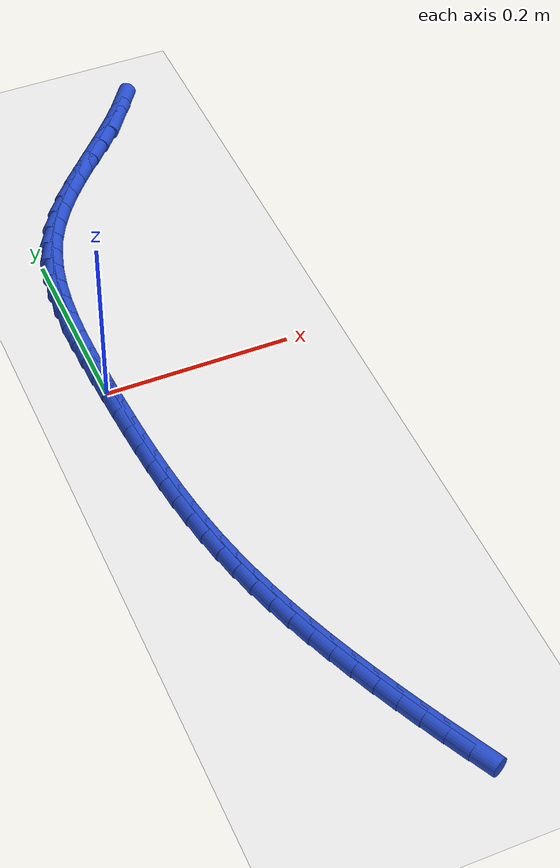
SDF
<sdf version="1.6">
 <world name="default">
  <model name="ground_plane">
   <static>1</static>
   <link name="link">
    <collision name="collision">
     <geometry><plane><normal>0 0 1</normal><size>100 100</size></plane></geometry>
     <surface><friction><ode><mu>100</mu><mu2>50</mu2></ode></friction></surface>
    </collision>
    <visual name="visual">
     <cast_shadows>0</cast_shadows>
     <geometry><plane><normal>0 0 1</normal><size>100 100</size></plane></geometry>
     <material>
      <script><uri>file://media/materials/scripts/gazebo.material</uri><name>Gazebo/WhiteGlow</name></script>
     </material>
    </visual>
   </link>
  </model>
  <model name="line">
   <link name="link_0">
    <pose>2.168404344971009e-19 -1.3877787807814457e-17 0.01 0 1.57 -1.525572002247885</pose>
    <collision name="collision">
     <geometry><cylinder><radius>0.01</radius><length>0.08</length></cylinder></geometry>
    </collision>
    <visual name="visual">
     <material>
      <script><name>Gazebo/Blue</name><uri>file://media/materials/scripts/gazebo.material</uri></script>
     </material>
     <geometry><cylinder><radius>0.01</radius><length>0.08</length></cylinder></geometry>
    </visual>
   </link>
   <link name="link_1">
    <pose>-0.001192701186760146 0.026355019515203342 0.01 0 1.57 -1.5404109730915096</pose>
    <collision name="collision">
     <geometry><cylinder><radius>0.01</radius><length>0.08</length></cylinder></geometry>
    </collision>
    <visual name="visual">
     <material>
      <script><name>Gazebo/Blue</name><uri>file://media/materials/scripts/gazebo.material</uri></script>
     </material>
     <geometry><cylinder><radius>0.01</radius><length>0.08</length></cylinder></geometry>
    </visual>
   </link>
   <link name="link_2">
    <pose>-0.001996711604233633 0.0528073350155297 0.01 0 1.57 -1.5643912887022506</pose>
    <collision name="collision">
     <geometry><cylinder><radius>0.01</radius><length>0.08</length></cylinder></geometry>
    </collision>
    <visual name="visual">
     <material>
      <script><name>Gazebo/Blue</name><uri>file://media/materials/scripts/gazebo.material</uri></script>
     </material>
     <geometry><cylinder><radius>0.01</radius><length>0.08</length></cylinder></geometry>
    </visual>
   </link>
   <link name="link_3">
    <pose>-0.00216583373129672 0.07921152057897023 0.01 0 1.57 1.5436398385513426</pose>
    <collision name="collision">
     <geometry><cylinder><radius>0.01</radius><length>0.08</length></cylinder></geometry>
    </collision>
    <visual name="visual">
     <material>
      <script><name>Gazebo/Blue</name><uri>file://media/materials/scripts/gazebo.material</uri></script>
     </material>
     <geometry><cylinder><radius>0.01</radius><length>0.08</length></cylinder></geometry>
    </visual>
   </link>
   <link name="link_4">
    <pose>-0.001453870046825666 0.10542215028351616 0.01 0 1.57 1.499824508919937</pose>
    <collision name="collision">
     <geometry><cylinder><radius>0.01</radius><length>0.08</length></cylinder></geometry>
    </collision>
    <visual name="visual">
     <material>
      <script><name>Gazebo/Blue</name><uri>file://media/materials/scripts/gazebo.material</uri></script>
     </material>
     <geometry><cylinder><radius>0.01</radius><length>0.08</length></cylinder></geometry>
    </visual>
   </link>
   <link name="link_5">
    <pose>0.0003853769703032672 0.1312937982071587 0.01 0 1.57 1.4449165321309105</pose>
    <collision name="collision">
     <geometry><cylinder><radius>0.01</radius><length>0.08</length></cylinder></geometry>
    </collision>
    <visual name="visual">
     <material>
      <script><name>Gazebo/Blue</name><uri>file://media/materials/scripts/gazebo.material</uri></script>
     </material>
     <geometry><cylinder><radius>0.01</radius><length>0.08</length></cylinder></geometry>
    </visual>
   </link>
   <link name="link_6">
    <pose>0.0035981048412138212 0.15668103842788905 0.01 0 1.57 1.3780297026481514</pose>
    <collision name="collision">
     <geometry><cylinder><radius>0.01</radius><length>0.08</length></cylinder></geometry>
    </collision>
    <visual name="visual">
     <material>
      <script><name>Gazebo/Blue</name><uri>file://media/materials/scripts/gazebo.material</uri></script>
     </material>
     <geometry><cylinder><radius>0.01</radius><length>0.08</length></cylinder></geometry>
    </visual>
   </link>
   <link name="link_7">
    <pose>0.00843051108702974 0.18143844502369835 0.01 0 1.57 1.2984342029268958</pose>
    <collision name="collision">
     <geometry><cylinder><radius>0.01</radius><length>0.08</length></cylinder></geometry>
    </collision>
    <visual name="visual">
     <material>
      <script><name>Gazebo/Blue</name><uri>file://media/materials/scripts/gazebo.material</uri></script>
     </material>
     <geometry><cylinder><radius>0.01</radius><length>0.08</length></cylinder></geometry>
    </visual>
   </link>
   <link name="link_8">
    <pose>0.015128793228874757 0.20542059207257785 0.01 0 1.57 1.205869643138353</pose>
    <collision name="collision">
     <geometry><cylinder><radius>0.01</radius><length>0.08</length></cylinder></geometry>
    </collision>
    <visual name="visual">
     <material>
      <script><name>Gazebo/Blue</name><uri>file://media/materials/scripts/gazebo.material</uri></script>
     </material>
     <geometry><cylinder><radius>0.01</radius><length>0.08</length></cylinder></geometry>
    </visual>
   </link>
   <link name="link_9">
    <pose>0.023939148787872615 0.22848205365251878 0.01 0 1.57 1.101675434037345</pose>
    <collision name="collision">
     <geometry><cylinder><radius>0.01</radius><length>0.08</length></cylinder></geometry>
    </collision>
    <visual name="visual">
     <material>
      <script><name>Gazebo/Blue</name><uri>file://media/materials/scripts/gazebo.material</uri></script>
     </material>
     <geometry><cylinder><radius>0.01</radius><length>0.08</length></cylinder></geometry>
    </visual>
   </link>
   <link name="link_10">
    <pose>0.03509188397794311 0.2504856154587042 0.01 0 1.57 1.00310683562596</pose>
    <collision name="collision">
     <geometry><cylinder><radius>0.01</radius><length>0.08</length></cylinder></geometry>
    </collision>
    <visual name="visual">
     <material>
      <script><name>Gazebo/Blue</name><uri>file://media/materials/scripts/gazebo.material</uri></script>
     </material>
     <geometry><cylinder><radius>0.01</radius><length>0.08</length></cylinder></geometry>
    </visual>
   </link>
   <link name="link_11">
    <pose>0.04847463441397935 0.2714711335648583 0.01 0 1.57 0.926142022619364</pose>
    <collision name="collision">
     <geometry><cylinder><radius>0.01</radius><length>0.08</length></cylinder></geometry>
    </collision>
    <visual name="visual">
     <material>
      <script><name>Gazebo/Blue</name><uri>file://media/materials/scripts/gazebo.material</uri></script>
     </material>
     <geometry><cylinder><radius>0.01</radius><length>0.08</length></cylinder></geometry>
    </visual>
   </link>
   <link name="link_12">
    <pose>0.06364458784133728 0.29164921849376924 0.01 0 1.57 0.870737300951593</pose>
    <collision name="collision">
     <geometry><cylinder><radius>0.01</radius><length>0.08</length></cylinder></geometry>
    </collision>
    <visual name="visual">
     <material>
      <script><name>Gazebo/Blue</name><uri>file://media/materials/scripts/gazebo.material</uri></script>
     </material>
     <geometry><cylinder><radius>0.01</radius><length>0.08</length></cylinder></geometry>
    </visual>
   </link>
   <link name="link_13">
    <pose>0.08014548625503527 0.3112374286771168 0.01 0 1.57 0.8356491842077733</pose>
    <collision name="collision">
     <geometry><cylinder><radius>0.01</radius><length>0.08</length></cylinder></geometry>
    </collision>
    <visual name="visual">
     <material>
      <script><name>Gazebo/Blue</name><uri>file://media/materials/scripts/gazebo.material</uri></script>
     </material>
     <geometry><cylinder><radius>0.01</radius><length>0.08</length></cylinder></geometry>
    </visual>
   </link>
   <link name="link_14">
    <pose>0.09752107165009188 0.33045332254658116 0.01 0 1.57 0.8197657534150228</pose>
    <collision name="collision">
     <geometry><cylinder><radius>0.01</radius><length>0.08</length></cylinder></geometry>
    </collision>
    <visual name="visual">
     <material>
      <script><name>Gazebo/Blue</name><uri>file://media/materials/scripts/gazebo.material</uri></script>
     </material>
     <geometry><cylinder><radius>0.01</radius><length>0.08</length></cylinder></geometry>
    </visual>
   </link>
   <link name="link_15">
    <pose>0.11531508602152549 0.3495144585338423 0.01 0 1.57 0.8224675810721056</pose>
    <collision name="collision">
     <geometry><cylinder><radius>0.01</radius><length>0.08</length></cylinder></geometry>
    </collision>
    <visual name="visual">
     <material>
      <script><name>Gazebo/Blue</name><uri>file://media/materials/scripts/gazebo.material</uri></script>
     </material>
     <geometry><cylinder><radius>0.01</radius><length>0.08</length></cylinder></geometry>
    </visual>
   </link>
   <link name="link_16">
    <pose>0.13307127136435454 0.36863839507058005 0.01 0 1.57 0.8437558200754279</pose>
    <collision name="collision">
     <geometry><cylinder><radius>0.01</radius><length>0.08</length></cylinder></geometry>
    </collision>
    <visual name="visual">
     <material>
      <script><name>Gazebo/Blue</name><uri>file://media/materials/scripts/gazebo.material</uri></script>
     </material>
     <geometry><cylinder><radius>0.01</radius><length>0.08</length></cylinder></geometry>
    </visual>
   </link>
   <link name="link_17">
    <pose>0.15033336967359756 0.38804269058847474 0.01 0 1.57 0.8842209202165721</pose>
    <collision name="collision">
     <geometry><cylinder><radius>0.01</radius><length>0.08</length></cylinder></geometry>
    </collision>
    <visual name="visual">
     <material>
      <script><name>Gazebo/Blue</name><uri>file://media/materials/scripts/gazebo.material</uri></script>
     </material>
     <geometry><cylinder><radius>0.01</radius><length>0.08</length></cylinder></geometry>
    </visual>
   </link>
   <link name="link_18">
    <pose>0.1666451229442729 0.40794490351920604 0.01 0 1.57 0.9448461479382917</pose>
    <collision name="collision">
     <geometry><cylinder><radius>0.01</radius><length>0.08</length></cylinder></geometry>
    </collision>
    <visual name="visual">
     <material>
      <script><name>Gazebo/Blue</name><uri>file://media/materials/scripts/gazebo.material</uri></script>
     </material>
     <geometry><cylinder><radius>0.01</radius><length>0.08</length></cylinder></geometry>
    </visual>
   </link>
   <link name="link_239">
    <pose>0.13818501792675497 -0.5120673890689114 0.01 0 1.57 -1.1001606948947698</pose>
    <collision name="collision">
     <geometry><cylinder><radius>0.01</radius><length>0.08</length></cylinder></geometry>
    </collision>
    <visual name="visual">
     <material>
      <script><name>Gazebo/Blue</name><uri>file://media/materials/scripts/gazebo.material</uri></script>
     </material>
     <geometry><cylinder><radius>0.01</radius><length>0.08</length></cylinder></geometry>
    </visual>
   </link>
   <link name="link_240">
    <pose>0.12633753896259936 -0.48878068429270993 0.01 0 1.57 -1.1148287015261091</pose>
    <collision name="collision">
     <geometry><cylinder><radius>0.01</radius><length>0.08</length></cylinder></geometry>
    </collision>
    <visual name="visual">
     <material>
      <script><name>Gazebo/Blue</name><uri>file://media/materials/scripts/gazebo.material</uri></script>
     </material>
     <geometry><cylinder><radius>0.01</radius><length>0.08</length></cylinder></geometry>
    </visual>
   </link>
   <link name="link_241">
    <pose>0.11485885296513568 -0.4653756467595939 0.01 0 1.57 -1.1269232557764397</pose>
    <collision name="collision">
     <geometry><cylinder><radius>0.01</radius><length>0.08</length></cylinder></geometry>
    </collision>
    <visual name="visual">
     <material>
      <script><name>Gazebo/Blue</name><uri>file://media/materials/scripts/gazebo.material</uri></script>
     </material>
     <geometry><cylinder><radius>0.01</radius><length>0.08</length></cylinder></geometry>
    </visual>
   </link>
   <link name="link_242">
    <pose>0.1037100310166744 -0.44193014240612855 0.01 0 1.57 -1.140251329511793</pose>
    <collision name="collision">
     <geometry><cylinder><radius>0.01</radius><length>0.08</length></cylinder></geometry>
    </collision>
    <visual name="visual">
     <material>
      <script><name>Gazebo/Blue</name><uri>file://media/materials/scripts/gazebo.material</uri></script>
     </material>
     <geometry><cylinder><radius>0.01</radius><length>0.08</length></cylinder></geometry>
    </visual>
   </link>
   <link name="link_243">
    <pose>0.09292549981406815 -0.418448797642161 0.01 0 1.57 -1.1558767157863945</pose>
    <collision name="collision">
     <geometry><cylinder><radius>0.01</radius><length>0.08</length></cylinder></geometry>
    </collision>
    <visual name="visual">
     <material>
      <script><name>Gazebo/Blue</name><uri>file://media/materials/scripts/gazebo.material</uri></script>
     </material>
     <geometry><cylinder><radius>0.01</radius><length>0.08</length></cylinder></geometry>
    </visual>
   </link>
   <link name="link_244">
    <pose>0.0825596211890995 -0.39491633529065595 0.01 0 1.57 -1.173840542048293</pose>
    <collision name="collision">
     <geometry><cylinder><radius>0.01</radius><length>0.08</length></cylinder></geometry>
    </collision>
    <visual name="visual">
     <material>
      <script><name>Gazebo/Blue</name><uri>file://media/materials/scripts/gazebo.material</uri></script>
     </material>
     <geometry><cylinder><radius>0.01</radius><length>0.08</length></cylinder></geometry>
    </visual>
   </link>
   <link name="link_245">
    <pose>0.07266675736990337 -0.37131747777885243 0.01 0 1.57 -1.1941812190243326</pose>
    <collision name="collision">
     <geometry><cylinder><radius>0.01</radius><length>0.08</length></cylinder></geometry>
    </collision>
    <visual name="visual">
     <material>
      <script><name>Gazebo/Blue</name><uri>file://media/materials/scripts/gazebo.material</uri></script>
     </material>
     <geometry><cylinder><radius>0.01</radius><length>0.08</length></cylinder></geometry>
    </visual>
   </link>
   <link name="link_246">
    <pose>0.06330127058461549 -0.34763694753399066 0.01 0 1.57 -1.216931449617758</pose>
    <collision name="collision">
     <geometry><cylinder><radius>0.01</radius><length>0.08</length></cylinder></geometry>
    </collision>
    <visual name="visual">
     <material>
      <script><name>Gazebo/Blue</name><uri>file://media/materials/scripts/gazebo.material</uri></script>
     </material>
     <geometry><cylinder><radius>0.01</radius><length>0.08</length></cylinder></geometry>
    </visual>
   </link>
   <link name="link_247">
    <pose>0.054517523061370816 -0.3238594669833098 0.01 0 1.57 -1.2421146374802778</pose>
    <collision name="collision">
     <geometry><cylinder><radius>0.01</radius><length>0.08</length></cylinder></geometry>
    </collision>
    <visual name="visual">
     <material>
      <script><name>Gazebo/Blue</name><uri>file://media/materials/scripts/gazebo.material</uri></script>
     </material>
     <geometry><cylinder><radius>0.01</radius><length>0.08</length></cylinder></geometry>
    </visual>
   </link>
   <link name="link_248">
    <pose>0.046369877028304494 -0.29996975855404884 0.01 0 1.57 -1.2697407331783734</pose>
    <collision name="collision">
     <geometry><cylinder><radius>0.01</radius><length>0.08</length></cylinder></geometry>
    </collision>
    <visual name="visual">
     <material>
      <script><name>Gazebo/Blue</name><uri>file://media/materials/scripts/gazebo.material</uri></script>
     </material>
     <geometry><cylinder><radius>0.01</radius><length>0.08</length></cylinder></geometry>
    </visual>
   </link>
   <link name="link_249">
    <pose>0.03891269471355178 -0.27595254467344743 0.01 0 1.57 -1.2998015940739094</pose>
    <collision name="collision">
     <geometry><cylinder><radius>0.01</radius><length>0.08</length></cylinder></geometry>
    </collision>
    <visual name="visual">
     <material>
      <script><name>Gazebo/Blue</name><uri>file://media/materials/scripts/gazebo.material</uri></script>
     </material>
     <geometry><cylinder><radius>0.01</radius><length>0.08</length></cylinder></geometry>
    </visual>
   </link>
   <link name="link_250">
    <pose>0.03220033834524782 -0.2517925477687447 0.01 0 1.57 -1.3321706801869344</pose>
    <collision name="collision">
     <geometry><cylinder><radius>0.01</radius><length>0.08</length></cylinder></geometry>
    </collision>
    <visual name="visual">
     <material>
      <script><name>Gazebo/Blue</name><uri>file://media/materials/scripts/gazebo.material</uri></script>
     </material>
     <geometry><cylinder><radius>0.01</radius><length>0.08</length></cylinder></geometry>
    </visual>
   </link>
   <link name="link_251">
    <pose>0.026284748143613916 -0.22747462770889704 0.01 0 1.57 -1.36442958486215</pose>
    <collision name="collision">
     <geometry><cylinder><radius>0.01</radius><length>0.08</length></cylinder></geometry>
    </collision>
    <visual name="visual">
     <material>
      <script><name>Gazebo/Blue</name><uri>file://media/materials/scripts/gazebo.material</uri></script>
     </material>
     <geometry><cylinder><radius>0.01</radius><length>0.08</length></cylinder></geometry>
    </visual>
   </link>
   <link name="link_252">
    <pose>0.021158340142041005 -0.20298702218272052 0.01 0 1.57 -1.3940099511873711</pose>
    <collision name="collision">
     <geometry><cylinder><radius>0.01</radius><length>0.08</length></cylinder></geometry>
    </collision>
    <visual name="visual">
     <material>
      <script><name>Gazebo/Blue</name><uri>file://media/materials/scripts/gazebo.material</uri></script>
     </material>
     <geometry><cylinder><radius>0.01</radius><length>0.08</length></cylinder></geometry>
    </visual>
   </link>
   <link name="link_253">
    <pose>0.01675180448418709 -0.17832147163895917 0.01 0 1.57 -1.4206828390238002</pose>
    <collision name="collision">
     <geometry><cylinder><radius>0.01</radius><length>0.08</length></cylinder></geometry>
    </collision>
    <visual name="visual">
     <material>
      <script><name>Gazebo/Blue</name><uri>file://media/materials/scripts/gazebo.material</uri></script>
     </material>
     <geometry><cylinder><radius>0.01</radius><length>0.08</length></cylinder></geometry>
    </visual>
   </link>
   <link name="link_254">
    <pose>0.01299296878310752 -0.1534698789664191 0.01 0 1.57 -1.4443743498483532</pose>
    <collision name="collision">
     <geometry><cylinder><radius>0.01</radius><length>0.08</length></cylinder></geometry>
    </collision>
    <visual name="visual">
     <material>
      <script><name>Gazebo/Blue</name><uri>file://media/materials/scripts/gazebo.material</uri></script>
     </material>
     <geometry><cylinder><radius>0.01</radius><length>0.08</length></cylinder></geometry>
    </visual>
   </link>
   <link name="link_255">
    <pose>0.009809660651857812 -0.1284241470539069 0.01 0 1.57 -1.4650470021253592</pose>
    <collision name="collision">
     <geometry><cylinder><radius>0.01</radius><length>0.08</length></cylinder></geometry>
    </collision>
    <visual name="visual">
     <material>
      <script><name>Gazebo/Blue</name><uri>file://media/materials/scripts/gazebo.material</uri></script>
     </material>
     <geometry><cylinder><radius>0.01</radius><length>0.08</length></cylinder></geometry>
    </visual>
   </link>
   <link name="link_256">
    <pose>0.0071297077034934726 -0.10317617879022939 0.01 0 1.57 -1.482693484647897</pose>
    <collision name="collision">
     <geometry><cylinder><radius>0.01</radius><length>0.08</length></cylinder></geometry>
    </collision>
    <visual name="visual">
     <material>
      <script><name>Gazebo/Blue</name><uri>file://media/materials/scripts/gazebo.material</uri></script>
     </material>
     <geometry><cylinder><radius>0.01</radius><length>0.08</length></cylinder></geometry>
    </visual>
   </link>
   <link name="link_257">
    <pose>0.004880937551070011 -0.07771787706419321 0.01 0 1.57 -1.4973306423980284</pose>
    <collision name="collision">
     <geometry><cylinder><radius>0.01</radius><length>0.08</length></cylinder></geometry>
    </collision>
    <visual name="visual">
     <material>
      <script><name>Gazebo/Blue</name><uri>file://media/materials/scripts/gazebo.material</uri></script>
     </material>
     <geometry><cylinder><radius>0.01</radius><length>0.08</length></cylinder></geometry>
    </visual>
   </link>
   <link name="link_258">
    <pose>0.002991177807642939 -0.05204114476460513 0.01 0 1.57 -1.5089940515349707</pose>
    <collision name="collision">
     <geometry><cylinder><radius>0.01</radius><length>0.08</length></cylinder></geometry>
    </collision>
    <visual name="visual">
     <material>
      <script><name>Gazebo/Blue</name><uri>file://media/materials/scripts/gazebo.material</uri></script>
     </material>
     <geometry><cylinder><radius>0.01</radius><length>0.08</length></cylinder></geometry>
    </visual>
   </link>
   <link name="link_259">
    <pose>0.0013882560862677647 -0.026137884780271823 0.01 0 1.57 -1.5177333917514746</pose>
    <collision name="collision">
     <geometry><cylinder><radius>0.01</radius><length>0.08</length></cylinder></geometry>
    </collision>
    <visual name="visual">
     <material>
      <script><name>Gazebo/Blue</name><uri>file://media/materials/scripts/gazebo.material</uri></script>
     </material>
     <geometry><cylinder><radius>0.01</radius><length>0.08</length></cylinder></geometry>
    </visual>
   </link>
   <link name="link_260">
    <pose>-6.505213034913027e-19 -1.3877787807814457e-17 0.01 0 1.57 -1.5236087059537653</pose>
    <collision name="collision">
     <geometry><cylinder><radius>0.01</radius><length>0.08</length></cylinder></geometry>
    </collision>
    <visual name="visual">
     <material>
      <script><name>Gazebo/Blue</name><uri>file://media/materials/scripts/gazebo.material</uri></script>
     </material>
     <geometry><cylinder><radius>0.01</radius><length>0.08</length></cylinder></geometry>
    </visual>
   </link>
   <link name="link_261">
    <pose>-0.0012457628381048482 0.0263806066874036 0.01 0 1.57 -1.5266875515487977</pose>
    <collision name="collision">
     <geometry><cylinder><radius>0.01</radius><length>0.08</length></cylinder></geometry>
    </collision>
    <visual name="visual">
     <material>
      <script><name>Gazebo/Blue</name><uri>file://media/materials/scripts/gazebo.material</uri></script>
     </material>
     <geometry><cylinder><radius>0.01</radius><length>0.08</length></cylinder></geometry>
    </visual>
   </link>
   <link name="link_262">
    <pose>-0.0024212048149912673 0.05301203239313228 0.01 0 1.57 -1.5251553040696217</pose>
    <collision name="collision">
     <geometry><cylinder><radius>0.01</radius><length>0.08</length></cylinder></geometry>
    </collision>
    <visual name="visual">
     <material>
      <script><name>Gazebo/Blue</name><uri>file://media/materials/scripts/gazebo.material</uri></script>
     </material>
     <geometry><cylinder><radius>0.01</radius><length>0.08</length></cylinder></geometry>
    </visual>
   </link>
  </model>
 </world>
</sdf>
